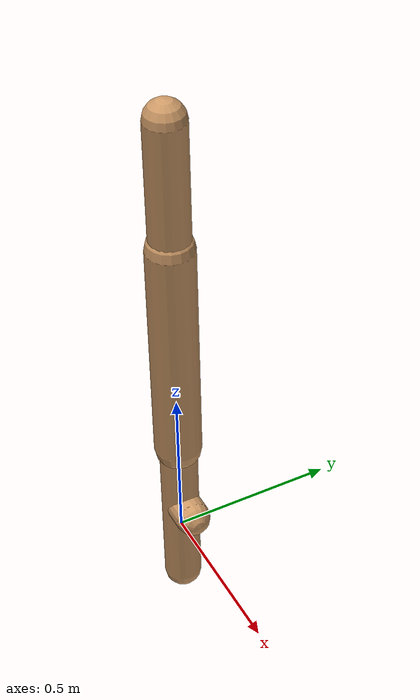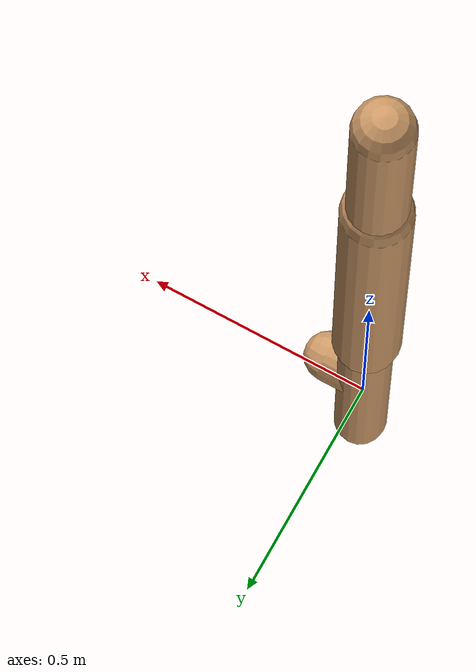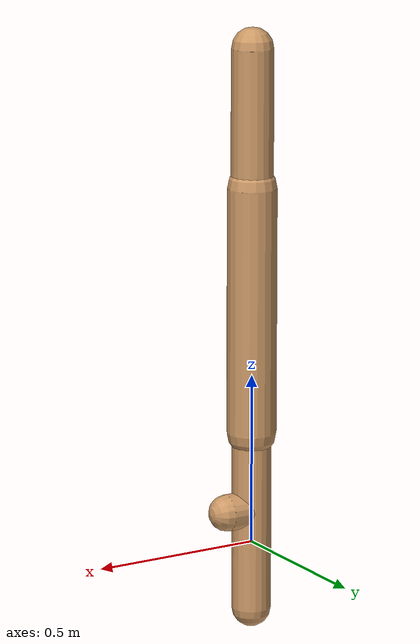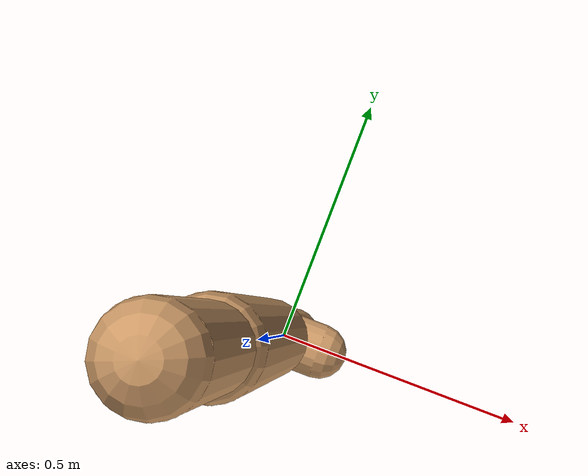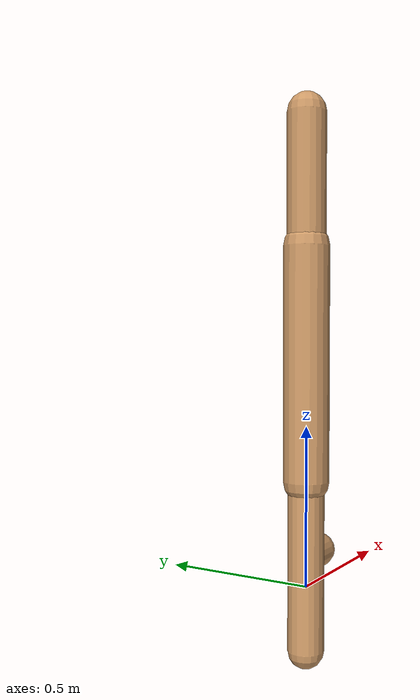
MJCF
<mujoco model="walker2d">
  <compiler angle="degree" coordinate="global" inertiafromgeom="true" />
  <default>
    <joint armature="0.01" damping=".1" limited="true" />
    <geom conaffinity="0" condim="3" contype="1" density="1000" friction="0.8 .1 .1" rgba="0.8 0.6 .4 1" />
  </default>
  <option integrator="RK4" timestep="0.002" />
  <worldbody>

    <body name="torso" pos="0 0 0.5676271224310311">
      <joint armature="0" axis="1 0 0" damping="0" limited="false" name="ignorex" pos="0 0 0" stiffness="0" type="slide" />
      <joint armature="0" axis="0 0 1" damping="0" limited="false" name="ignorez" pos="0 0 0" ref="1.25" stiffness="0" type="slide" />
      <joint armature="0" axis="0 1 0" damping="0" limited="false" name="ignorey" pos="0 0 0" stiffness="0" type="hinge" />
      <geom fromto="0 0 1.45 0 0 1.05" name="torso_geom" size="0.06090738307882887" type="capsule" />
      <body name="thigh">
        <joint axis="0 -1 0" name="thigh_joint" pos="0 0 1.05" range="-150 0" type="hinge" />
        <geom fromto="0.0 0.0 1.05 0.0 0.0 0.3311239946379326" name="thigh_geom" size="0.07180731414219609" type="capsule" />
        <body name="leg" pos="0.0 0.0 -0.2688760053620674">
          <joint axis="0 -1 0" name="leg_joint" pos="0 0 0.6" range="-150 0" type="hinge" />
          <geom fromto="0.0 0.0 0.6 0.0 0.0 -0.19875111706896373" name="leg_geom" size="0.05744585131375686" type="capsule" />
          <body name="foot" pos="0.0 0.0 -0.29875111706896373">
            <joint axis="0 -1 0" name="foot_joint" pos="0 0 0.1" range="-45 45" type="hinge" />
            <geom fromto="0.0 0.0 0.1 0.08362615692382694 0.0 0.1" name="foot_geom" size="0.0534904375104865" type="capsule" />
          </body>
        </body>
      </body>

      <body name="thigh_left">
        <joint axis="0 -1 0" name="thigh_left_joint" pos="0 0 1.05" range="-150 0" type="hinge" />
        <geom fromto="0.0 0.0 1.05 0.0 0.0 0.3311239946379326" name="thigh_left_geom" rgba=".7 .3 .6 1" size="0.07180731414219609" type="capsule" />
        <body name="leg_left" pos="0.0 0.0 -0.2688760053620674">
          <joint axis="0 -1 0" name="leg_left_joint" pos="0 0 0.6" range="-150 0" type="hinge" />
          <geom fromto="0.0 0.0 0.6 0.0 0.0 -0.19875111706896373" name="leg_left_geom" rgba=".7 .3 .6 1" size="0.05744585131375686" type="capsule" />
          <body name="foot_left" pos="0.0 0.0 -0.29875111706896373">
            <joint axis="0 -1 0" name="foot_left_joint" pos="0 0 0.1" range="-45 45" type="hinge" />
            <geom fromto="0.0 0.0 0.1 0.08362615692382694 0.0 0.1" name="foot_left_geom" rgba=".7 .3 .6 1" size="0.0534904375104865" type="capsule" />
          </body>
        </body>
      </body>
    </body>
  </worldbody>
  <actuator>

    <motor ctrllimited="true" ctrlrange="-1.0 1.0" gear="100" joint="thigh_joint" />
    <motor ctrllimited="true" ctrlrange="-1.0 1.0" gear="100" joint="leg_joint" />
    <motor ctrllimited="true" ctrlrange="-1.0 1.0" gear="100" joint="foot_joint" />
    <motor ctrllimited="true" ctrlrange="-1.0 1.0" gear="100" joint="thigh_left_joint" />
    <motor ctrllimited="true" ctrlrange="-1.0 1.0" gear="100" joint="leg_left_joint" />
    <motor ctrllimited="true" ctrlrange="-1.0 1.0" gear="100" joint="foot_left_joint" />

  </actuator>
</mujoco>
